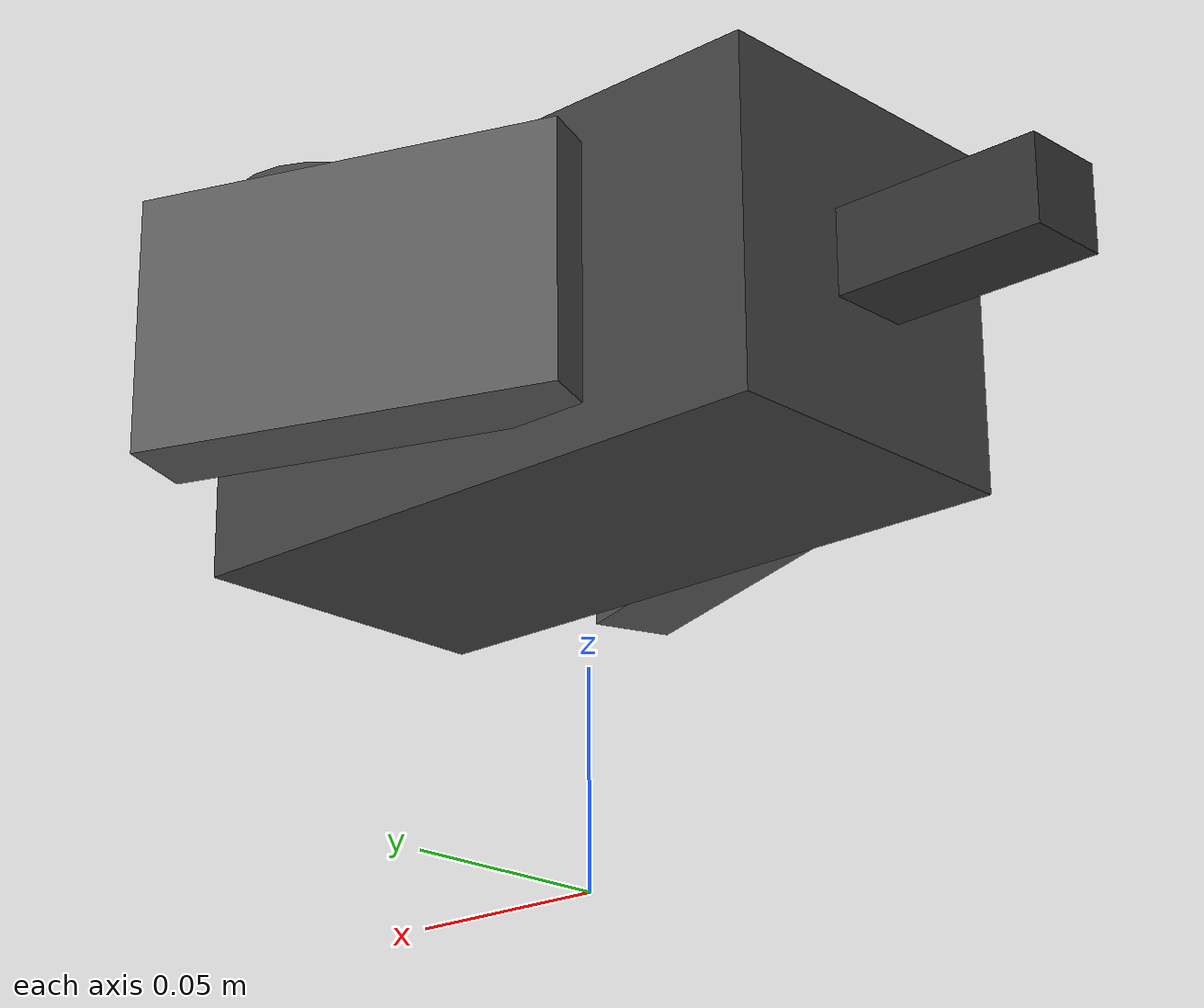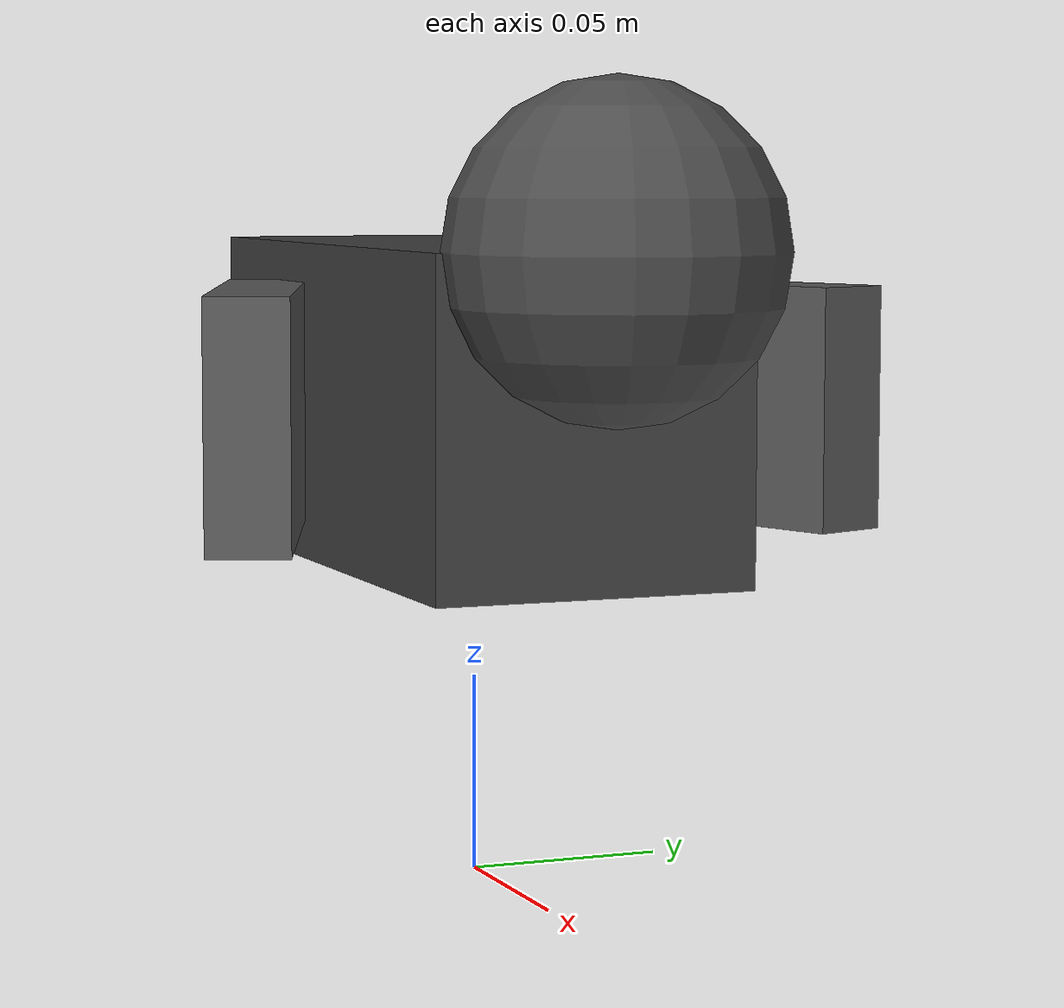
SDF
<?xml version="1.0"?>
<sdf version="1.7">
  <model name="bird_model">
    <static>false</static>

    <plugin name="bird_motion_plugin_bird_model" filename="libgazebo_ros_planar_move.so">
      <ros>
        <namespace>/bird_model</namespace>
        <remapping>cmd_vel:=cmd_vel</remapping>
        <remapping>odom:=odom</remapping>
      </ros>
      <update_rate>100</update_rate>
      <publish_rate>10</publish_rate>
      <publish_odom>true</publish_odom>
      <publish_odom_tf>true</publish_odom_tf>
      <odometry_frame>odom</odometry_frame>
      <robot_base_frame>body</robot_base_frame>
      <covariance_x>0.0001</covariance_x>
      <covariance_y>0.0001</covariance_y>
      <covariance_yaw>0.01</covariance_yaw>
    </plugin>

    <link name="body">
      <pose>0 0 0.12 0 0 0</pose>
      <inertial>
        <mass>0.25</mass>
        <inertia>
          <ixx>0.001</ixx>
          <iyy>0.001</iyy>
          <izz>0.001</izz>
          <ixy>0.0</ixy>
          <ixz>0.0</ixz>
          <iyz>0.0</iyz>
        </inertia>
      </inertial>

      <collision name="body_collision">
        <geometry>
          <box>
            <size>0.16 0.08 0.08</size>
          </box>
        </geometry>
      </collision>

      <visual name="body_visual">
        <geometry>
          <box>
            <size>0.16 0.08 0.08</size>
          </box>
        </geometry>
        <material>
          <ambient>0.15 0.15 0.15 1.0</ambient>
          <diffuse>0.25 0.25 0.25 1.0</diffuse>
          <specular>0.2 0.2 0.2 1.0</specular>
        </material>
      </visual>
    </link>

    <link name="left_wing">
      <pose>0.01 0.06 0.12 0 0 0.35</pose>
      <inertial>
        <mass>0.03</mass>
        <inertia>
          <ixx>0.00005</ixx>
          <iyy>0.00005</iyy>
          <izz>0.00002</izz>
          <ixy>0.0</ixy>
          <ixz>0.0</ixz>
          <iyz>0.0</iyz>
        </inertia>
      </inertial>
      <visual name="left_wing_visual">
        <geometry>
          <box>
            <size>0.10 0.02 0.06</size>
          </box>
        </geometry>
        <material>
          <ambient>0.22 0.22 0.22 1.0</ambient>
          <diffuse>0.35 0.35 0.35 1.0</diffuse>
          <specular>0.15 0.15 0.15 1.0</specular>
        </material>
      </visual>
    </link>

    <link name="right_wing">
      <pose>0.01 -0.06 0.12 0 0 -0.35</pose>
      <inertial>
        <mass>0.03</mass>
        <inertia>
          <ixx>0.00005</ixx>
          <iyy>0.00005</iyy>
          <izz>0.00002</izz>
          <ixy>0.0</ixy>
          <ixz>0.0</ixz>
          <iyz>0.0</iyz>
        </inertia>
      </inertial>
      <visual name="right_wing_visual">
        <geometry>
          <box>
            <size>0.10 0.02 0.06</size>
          </box>
        </geometry>
        <material>
          <ambient>0.22 0.22 0.22 1.0</ambient>
          <diffuse>0.35 0.35 0.35 1.0</diffuse>
          <specular>0.15 0.15 0.15 1.0</specular>
        </material>
      </visual>
    </link>

    <link name="head">
      <pose>0.09 0 0.16 0 0 0</pose>
      <inertial>
        <mass>0.08</mass>
        <inertia>
          <ixx>0.0002</ixx>
          <iyy>0.0002</iyy>
          <izz>0.0002</izz>
          <ixy>0.0</ixy>
          <ixz>0.0</ixz>
          <iyz>0.0</iyz>
        </inertia>
      </inertial>

      <collision name="head_collision">
        <geometry>
          <sphere>
            <radius>0.04</radius>
          </sphere>
        </geometry>
      </collision>

      <visual name="head_visual">
        <geometry>
          <sphere>
            <radius>0.04</radius>
          </sphere>
        </geometry>
        <material>
          <ambient>0.18 0.18 0.18 1.0</ambient>
          <diffuse>0.3 0.3 0.3 1.0</diffuse>
          <specular>0.2 0.2 0.2 1.0</specular>
        </material>
      </visual>
    </link>

    <link name="tail">
      <pose>-0.10 0 0.12 0 0 0</pose>
      <inertial>
        <mass>0.04</mass>
        <inertia>
          <ixx>0.0001</ixx>
          <iyy>0.0001</iyy>
          <izz>0.0001</izz>
          <ixy>0.0</ixy>
          <ixz>0.0</ixz>
          <iyz>0.0</iyz>
        </inertia>
      </inertial>

      <collision name="tail_collision">
        <geometry>
          <box>
            <size>0.06 0.02 0.02</size>
          </box>
        </geometry>
      </collision>

      <visual name="tail_visual">
        <geometry>
          <box>
            <size>0.06 0.02 0.02</size>
          </box>
        </geometry>
        <material>
          <ambient>0.12 0.12 0.12 1.0</ambient>
          <diffuse>0.2 0.2 0.2 1.0</diffuse>
          <specular>0.1 0.1 0.1 1.0</specular>
        </material>
      </visual>
    </link>

    <joint name="body_to_left_wing_joint" type="fixed">
      <parent>body</parent>
      <child>left_wing</child>
      <pose>0 0 0 0 0 0</pose>
    </joint>

    <joint name="body_to_right_wing_joint" type="fixed">
      <parent>body</parent>
      <child>right_wing</child>
      <pose>0 0 0 0 0 0</pose>
    </joint>

    <joint name="body_to_head_joint" type="fixed">
      <parent>body</parent>
      <child>head</child>
      <pose>0 0 0 0 0 0</pose>
    </joint>

    <joint name="body_to_tail_joint" type="fixed">
      <parent>body</parent>
      <child>tail</child>
      <pose>0 0 0 0 0 0</pose>
    </joint>
  </model>
</sdf>
